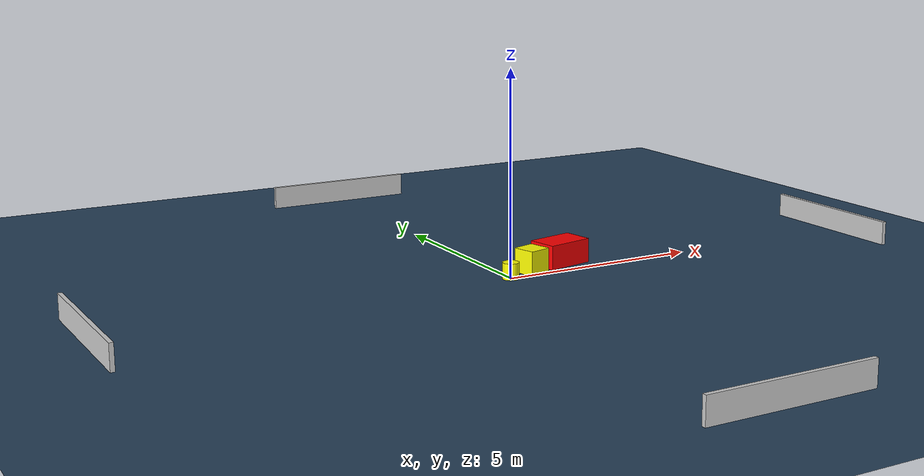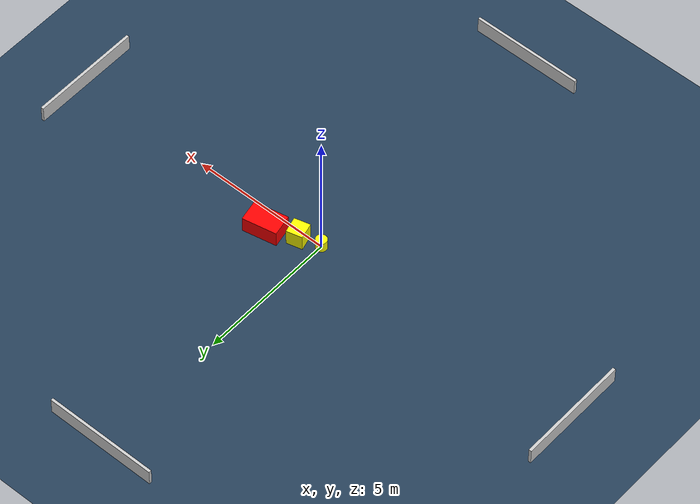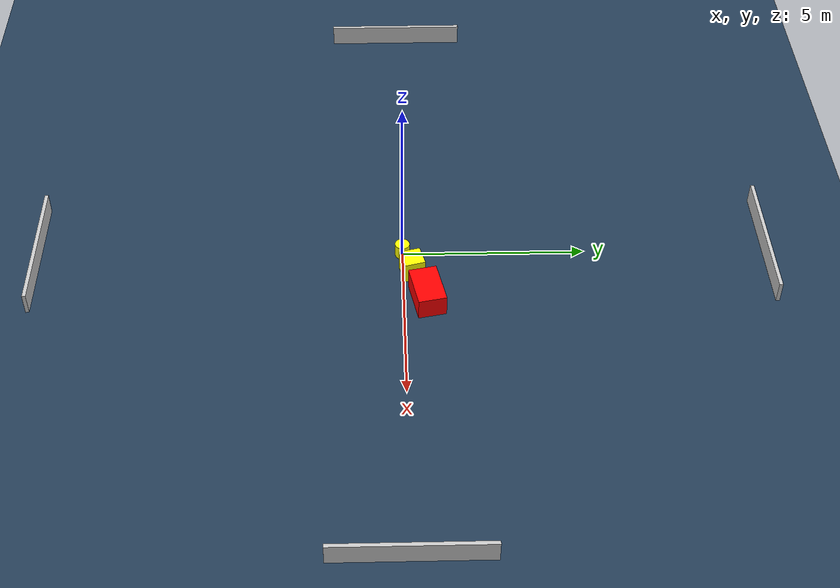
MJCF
<?xml version="1.0" ?>
<mujoco model="generated_environment">
  <option timestep="0.01" integrator="RK4" cone="elliptic"/>
  <default>
    <geom density="1"/>
  </default>
  <asset>
    <texture builtin="gradient" height="3072" name="skybox" rgb1="0.3 0.5 0.7" rgb2="0 0 0" type="skybox" width="512"/>
    <texture builtin="checker" height="300" name="groundplane" rgb1="0.2 0.3 0.4" rgb2="0.1 0.2 0.3" type="2d" width="300"/>
    <material name="groundplane" reflectance="0.2" texrepeat="5 5" texture="groundplane"/>
  </asset>
  <worldbody>
    <light dir="0 0 -1" directional="true" pos="0 0 1.5"/>
    <geom condim="3" friction="0.5 0.005 0.001" material="groundplane" name="floor" pos="0 0 0" size="0 0 0.05" type="plane"/>
    <body name="walls">
      <geom name="wall_1" condim="4" pos="-10.0 0.0 0.3" rgba="0.800000011920929 0.800000011920929 0.800000011920929 1.0" size="0.05 2.0 0.3" type="box"/>
      <geom name="wall_2" condim="4" pos="10.0 0.0 0.3" rgba="0.800000011920929 0.800000011920929 0.800000011920929 1.0" size="0.05 2.0 0.3" type="box"/>
      <geom name="wall_3" condim="4" pos="0.0 -10.0 0.3" rgba="0.800000011920929 0.800000011920929 0.800000011920929 1.0" size="2.0 0.05 0.3" type="box"/>
      <geom name="wall_4" condim="4" pos="0.0 10.0 0.3" rgba="0.800000011920929 0.800000011920929 0.800000011920929 1.0" size="2.0 0.05 0.3" type="box"/>
    </body>
    <body name="robot">
      <joint name="joint_x" type="slide" pos="0 0 0" axis="1 0 0"/>
      <joint name="joint_y" type="slide" pos="0 0 0" axis="0 1 0"/>
      <geom name="robot" type="cylinder" pos="0.0 0.0 0.2" size="0.2 0.2 0.0" mass="5.0" friction="1.0 0.005 0.0001" condim="4" rgba="1.0 1.0 0.0 1.0"/>
    </body>
    <body name="obstacle_1_movable">
      <geom name="obstacle_1_movable" condim="4" pos="0.7322515523923433 0.25230382301067694 0.3" euler="0 0 194.61279572361087" friction="0.0 0.005 0.001" rgba="1.0 1.0 0.0 1.0" size="0.2861585180682083 0.28928582754004317 0.3" type="box" mass="0.1"/>
      <joint type="free"/>
    </body>
    <body name="obstacle_2_static">
      <geom name="obstacle_2_static" condim="4" pos="1.7659229936259 0.6300854963505317 0.3" euler="0 0 101.44199528890914" friction="0.0 0.005 0.001" rgba="1.0 0.0 0.0 1.0" size="0.38316507406889483 0.6132859313320878 0.3" type="box"/>
    </body>
  </worldbody>
  <actuator>
    <motor name="actuator_x" joint="joint_x" gear="1" ctrlrange="-1 1"/>
    <motor name="actuator_y" joint="joint_y" gear="1" ctrlrange="-1 1"/>
  </actuator>
</mujoco>
